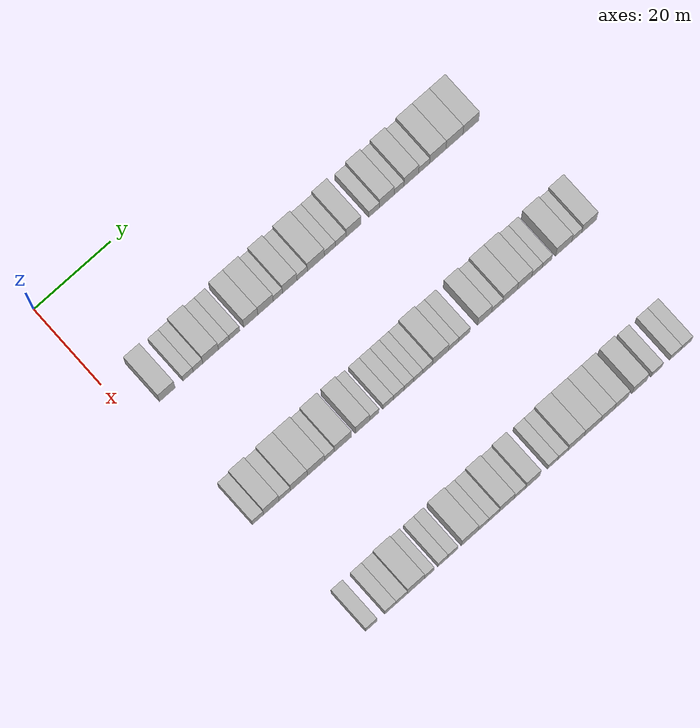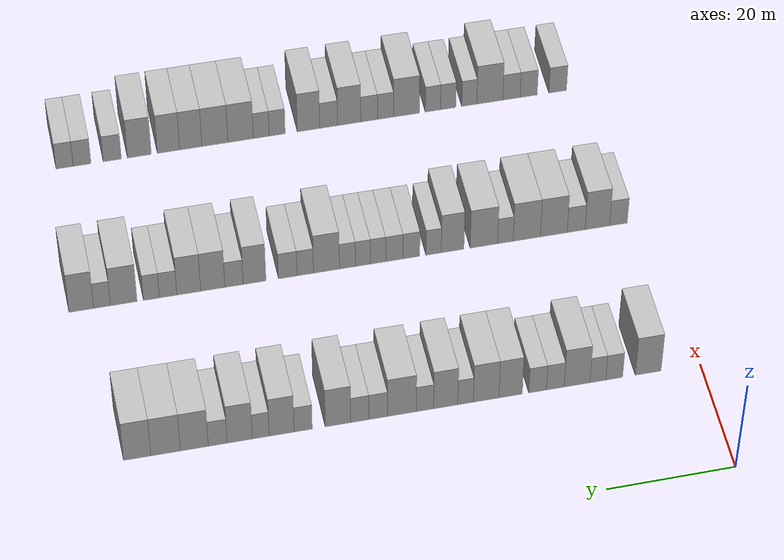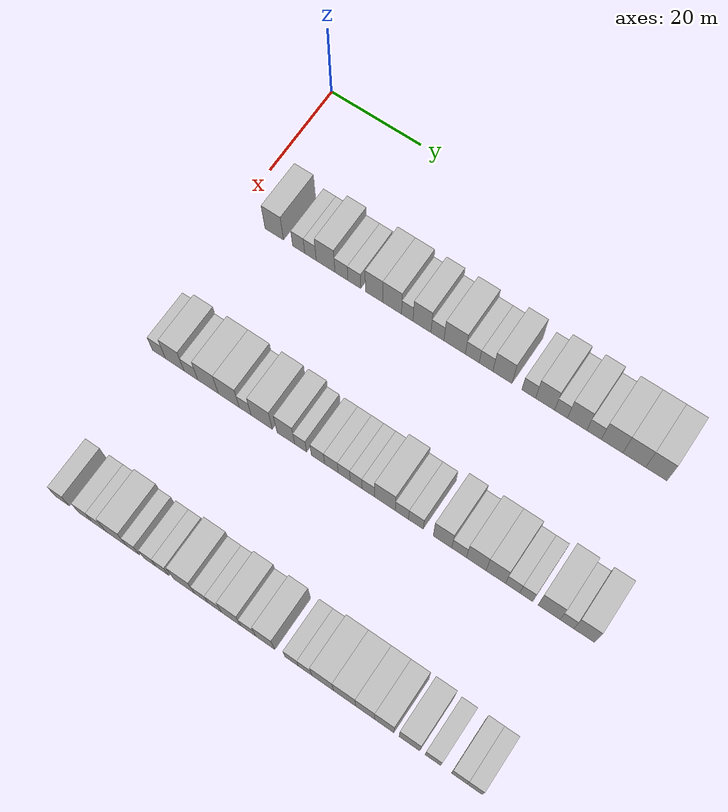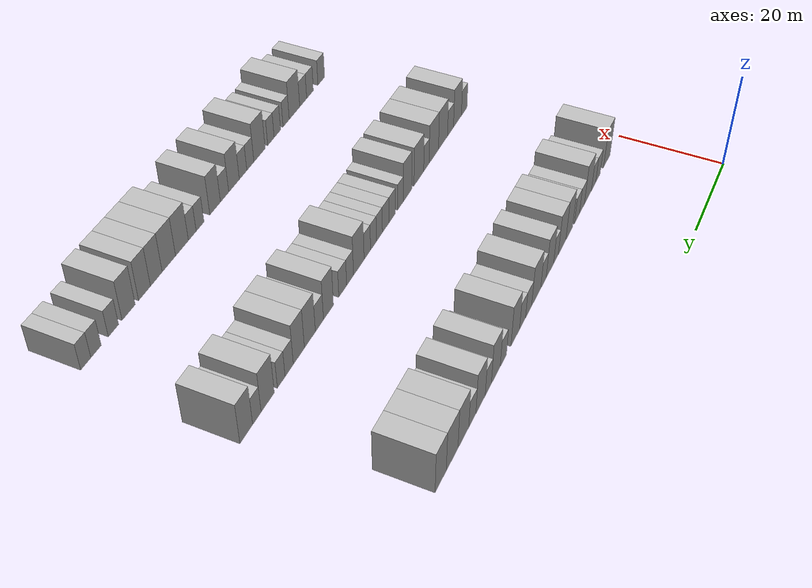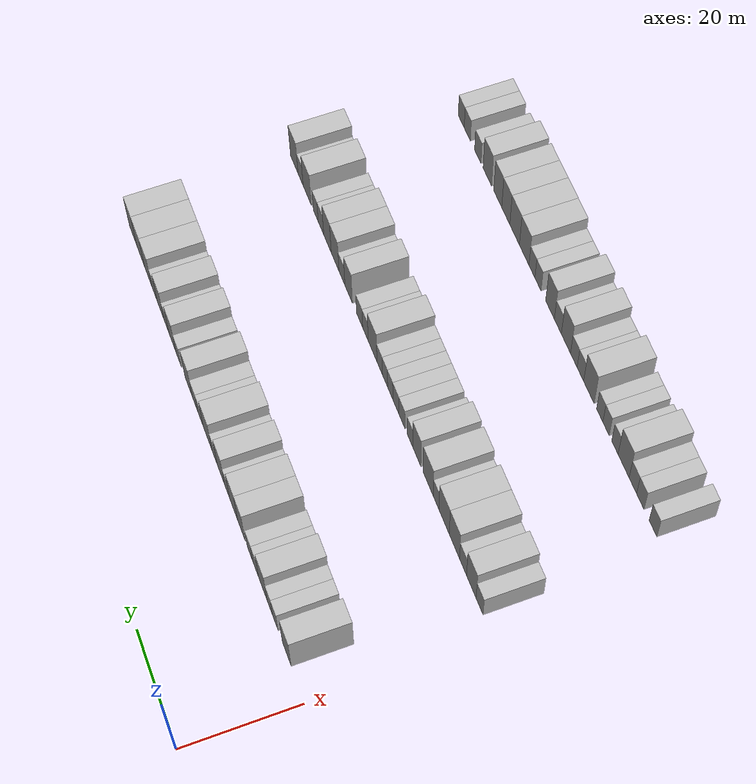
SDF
<sdf version="1.6">
 <world name="default">
  <model name="building_74">
   <static>1</static>
   <pose>25.0000 8.2992 0 0.000000 0.000000 0.000000</pose>
   <link name="link">
    <pose>0 0 4.50 0 0 0</pose>
    <collision name="collision"><geometry><box><size>10.0000 4.0874 9.0000</size></box></geometry></collision>
    <visual name="visual">
     <cast_shadows>0</cast_shadows>
     <geometry><box><size>10.0000 4.0874 9.0000</size></box></geometry>
     <material>
      <script>
       <uri>model://HANNAS_wall/materials/scripts</uri>
       <uri>model://HANNAS_wall/materials/textures</uri>
       <name>vrc/HANNAS_wall</name>
      </script>
     </material>
    </visual>
   </link>
  </model>
  <model name="building_75">
   <static>1</static>
   <pose>25.0000 13.6751 0 0.000000 0.000000 0.000000</pose>
   <link name="link">
    <pose>0 0 3.00 0 0 0</pose>
    <collision name="collision"><geometry><box><size>10.0000 2.6644 6.0000</size></box></geometry></collision>
    <visual name="visual">
     <cast_shadows>0</cast_shadows>
     <geometry><box><size>10.0000 2.6644 6.0000</size></box></geometry>
     <material>
      <script>
       <uri>model://HANNAS_wall/materials/scripts</uri>
       <uri>model://HANNAS_wall/materials/textures</uri>
       <name>vrc/HANNAS_wall</name>
      </script>
     </material>
    </visual>
   </link>
  </model>
  <model name="building_76">
   <static>1</static>
   <pose>25.0000 16.2622 0 0.000000 0.000000 0.000000</pose>
   <link name="link">
    <pose>0 0 3.00 0 0 0</pose>
    <collision name="collision"><geometry><box><size>10.0000 2.5098 6.0000</size></box></geometry></collision>
    <visual name="visual">
     <cast_shadows>0</cast_shadows>
     <geometry><box><size>10.0000 2.5098 6.0000</size></box></geometry>
     <material>
      <script>
       <uri>model://HANNAS_wall/materials/scripts</uri>
       <uri>model://HANNAS_wall/materials/textures</uri>
       <name>vrc/HANNAS_wall</name>
      </script>
     </material>
    </visual>
   </link>
  </model>
  <model name="building_77">
   <static>1</static>
   <pose>25.0000 19.5408 0 0.000000 0.000000 0.000000</pose>
   <link name="link">
    <pose>0 0 4.50 0 0 0</pose>
    <collision name="collision"><geometry><box><size>10.0000 4.0475 9.0000</size></box></geometry></collision>
    <visual name="visual">
     <cast_shadows>0</cast_shadows>
     <geometry><box><size>10.0000 4.0475 9.0000</size></box></geometry>
     <material>
      <script>
       <uri>model://HANNAS_wall/materials/scripts</uri>
       <uri>model://HANNAS_wall/materials/textures</uri>
       <name>vrc/HANNAS_wall</name>
      </script>
     </material>
    </visual>
   </link>
  </model>
  <model name="building_78">
   <static>1</static>
   <pose>25.0000 22.9685 0 0.000000 0.000000 0.000000</pose>
   <link name="link">
    <pose>0 0 3.00 0 0 0</pose>
    <collision name="collision"><geometry><box><size>10.0000 2.8078 6.0000</size></box></geometry></collision>
    <visual name="visual">
     <cast_shadows>0</cast_shadows>
     <geometry><box><size>10.0000 2.8078 6.0000</size></box></geometry>
     <material>
      <script>
       <uri>model://HANNAS_wall/materials/scripts</uri>
       <uri>model://HANNAS_wall/materials/textures</uri>
       <name>vrc/HANNAS_wall</name>
      </script>
     </material>
    </visual>
   </link>
  </model>
  <model name="building_79">
   <static>1</static>
   <pose>25.0000 25.7573 0 0.000000 0.000000 0.000000</pose>
   <link name="link">
    <pose>0 0 3.00 0 0 0</pose>
    <collision name="collision"><geometry><box><size>10.0000 2.7698 6.0000</size></box></geometry></collision>
    <visual name="visual">
     <cast_shadows>0</cast_shadows>
     <geometry><box><size>10.0000 2.7698 6.0000</size></box></geometry>
     <material>
      <script>
       <uri>model://HANNAS_wall/materials/scripts</uri>
       <uri>model://HANNAS_wall/materials/textures</uri>
       <name>vrc/HANNAS_wall</name>
      </script>
     </material>
    </visual>
   </link>
  </model>
  <model name="building_80">
   <static>1</static>
   <pose>25.0000 29.9776 0 0.000000 0.000000 0.000000</pose>
   <link name="link">
    <pose>0 0 4.50 0 0 0</pose>
    <collision name="collision"><geometry><box><size>10.0000 3.6709 9.0000</size></box></geometry></collision>
    <visual name="visual">
     <cast_shadows>0</cast_shadows>
     <geometry><box><size>10.0000 3.6709 9.0000</size></box></geometry>
     <material>
      <script>
       <uri>model://HANNAS_wall/materials/scripts</uri>
       <uri>model://HANNAS_wall/materials/textures</uri>
       <name>vrc/HANNAS_wall</name>
      </script>
     </material>
    </visual>
   </link>
  </model>
  <model name="building_81">
   <static>1</static>
   <pose>25.0000 33.8170 0 0.000000 0.000000 0.000000</pose>
   <link name="link">
    <pose>0 0 4.50 0 0 0</pose>
    <collision name="collision"><geometry><box><size>10.0000 4.0079 9.0000</size></box></geometry></collision>
    <visual name="visual">
     <cast_shadows>0</cast_shadows>
     <geometry><box><size>10.0000 4.0079 9.0000</size></box></geometry>
     <material>
      <script>
       <uri>model://HANNAS_wall/materials/scripts</uri>
       <uri>model://HANNAS_wall/materials/textures</uri>
       <name>vrc/HANNAS_wall</name>
      </script>
     </material>
    </visual>
   </link>
  </model>
  <model name="building_82">
   <static>1</static>
   <pose>25.0000 37.0328 0 0.000000 0.000000 0.000000</pose>
   <link name="link">
    <pose>0 0 3.00 0 0 0</pose>
    <collision name="collision"><geometry><box><size>10.0000 2.4236 6.0000</size></box></geometry></collision>
    <visual name="visual">
     <cast_shadows>0</cast_shadows>
     <geometry><box><size>10.0000 2.4236 6.0000</size></box></geometry>
     <material>
      <script>
       <uri>model://HANNAS_wall/materials/scripts</uri>
       <uri>model://HANNAS_wall/materials/textures</uri>
       <name>vrc/HANNAS_wall</name>
      </script>
     </material>
    </visual>
   </link>
  </model>
  <model name="building_83">
   <static>1</static>
   <pose>25.0000 40.1356 0 0.000000 0.000000 0.000000</pose>
   <link name="link">
    <pose>0 0 4.50 0 0 0</pose>
    <collision name="collision"><geometry><box><size>10.0000 3.7819 9.0000</size></box></geometry></collision>
    <visual name="visual">
     <cast_shadows>0</cast_shadows>
     <geometry><box><size>10.0000 3.7819 9.0000</size></box></geometry>
     <material>
      <script>
       <uri>model://HANNAS_wall/materials/scripts</uri>
       <uri>model://HANNAS_wall/materials/textures</uri>
       <name>vrc/HANNAS_wall</name>
      </script>
     </material>
    </visual>
   </link>
  </model>
  <model name="building_84">
   <static>1</static>
   <pose>25.0000 43.3741 0 0.000000 0.000000 0.000000</pose>
   <link name="link">
    <pose>0 0 3.00 0 0 0</pose>
    <collision name="collision"><geometry><box><size>10.0000 2.6952 6.0000</size></box></geometry></collision>
    <visual name="visual">
     <cast_shadows>0</cast_shadows>
     <geometry><box><size>10.0000 2.6952 6.0000</size></box></geometry>
     <material>
      <script>
       <uri>model://HANNAS_wall/materials/scripts</uri>
       <uri>model://HANNAS_wall/materials/textures</uri>
       <name>vrc/HANNAS_wall</name>
      </script>
     </material>
    </visual>
   </link>
  </model>
  <model name="building_85">
   <static>1</static>
   <pose>25.0000 46.9542 0 0.000000 0.000000 0.000000</pose>
   <link name="link">
    <pose>0 0 4.50 0 0 0</pose>
    <collision name="collision"><geometry><box><size>10.0000 4.4650 9.0000</size></box></geometry></collision>
    <visual name="visual">
     <cast_shadows>0</cast_shadows>
     <geometry><box><size>10.0000 4.4650 9.0000</size></box></geometry>
     <material>
      <script>
       <uri>model://HANNAS_wall/materials/scripts</uri>
       <uri>model://HANNAS_wall/materials/textures</uri>
       <name>vrc/HANNAS_wall</name>
      </script>
     </material>
    </visual>
   </link>
  </model>
  <model name="building_86">
   <static>1</static>
   <pose>25.0000 50.6215 0 0.000000 0.000000 0.000000</pose>
   <link name="link">
    <pose>0 0 3.00 0 0 0</pose>
    <collision name="collision"><geometry><box><size>10.0000 2.8697 6.0000</size></box></geometry></collision>
    <visual name="visual">
     <cast_shadows>0</cast_shadows>
     <geometry><box><size>10.0000 2.8697 6.0000</size></box></geometry>
     <material>
      <script>
       <uri>model://HANNAS_wall/materials/scripts</uri>
       <uri>model://HANNAS_wall/materials/textures</uri>
       <name>vrc/HANNAS_wall</name>
      </script>
     </material>
    </visual>
   </link>
  </model>
  <model name="building_87">
   <static>1</static>
   <pose>25.0000 53.4656 0 0.000000 0.000000 0.000000</pose>
   <link name="link">
    <pose>0 0 3.00 0 0 0</pose>
    <collision name="collision"><geometry><box><size>10.0000 2.8185 6.0000</size></box></geometry></collision>
    <visual name="visual">
     <cast_shadows>0</cast_shadows>
     <geometry><box><size>10.0000 2.8185 6.0000</size></box></geometry>
     <material>
      <script>
       <uri>model://HANNAS_wall/materials/scripts</uri>
       <uri>model://HANNAS_wall/materials/textures</uri>
       <name>vrc/HANNAS_wall</name>
      </script>
     </material>
    </visual>
   </link>
  </model>
  <model name="building_88">
   <static>1</static>
   <pose>25.0000 56.8361 0 0.000000 0.000000 0.000000</pose>
   <link name="link">
    <pose>0 0 4.50 0 0 0</pose>
    <collision name="collision"><geometry><box><size>10.0000 3.9224 9.0000</size></box></geometry></collision>
    <visual name="visual">
     <cast_shadows>0</cast_shadows>
     <geometry><box><size>10.0000 3.9224 9.0000</size></box></geometry>
     <material>
      <script>
       <uri>model://HANNAS_wall/materials/scripts</uri>
       <uri>model://HANNAS_wall/materials/textures</uri>
       <name>vrc/HANNAS_wall</name>
      </script>
     </material>
    </visual>
   </link>
  </model>
  <model name="building_89">
   <static>1</static>
   <pose>25.0000 62.1917 0 0.000000 0.000000 0.000000</pose>
   <link name="link">
    <pose>0 0 3.00 0 0 0</pose>
    <collision name="collision"><geometry><box><size>10.0000 2.7889 6.0000</size></box></geometry></collision>
    <visual name="visual">
     <cast_shadows>0</cast_shadows>
     <geometry><box><size>10.0000 2.7889 6.0000</size></box></geometry>
     <material>
      <script>
       <uri>model://HANNAS_wall/materials/scripts</uri>
       <uri>model://HANNAS_wall/materials/textures</uri>
       <name>vrc/HANNAS_wall</name>
      </script>
     </material>
    </visual>
   </link>
  </model>
  <model name="building_90">
   <static>1</static>
   <pose>25.0000 65.5030 0 0.000000 0.000000 0.000000</pose>
   <link name="link">
    <pose>0 0 4.50 0 0 0</pose>
    <collision name="collision"><geometry><box><size>10.0000 3.8338 9.0000</size></box></geometry></collision>
    <visual name="visual">
     <cast_shadows>0</cast_shadows>
     <geometry><box><size>10.0000 3.8338 9.0000</size></box></geometry>
     <material>
      <script>
       <uri>model://HANNAS_wall/materials/scripts</uri>
       <uri>model://HANNAS_wall/materials/textures</uri>
       <name>vrc/HANNAS_wall</name>
      </script>
     </material>
    </visual>
   </link>
  </model>
  <model name="building_91">
   <static>1</static>
   <pose>25.0000 68.7122 0 0.000000 0.000000 0.000000</pose>
   <link name="link">
    <pose>0 0 3.00 0 0 0</pose>
    <collision name="collision"><geometry><box><size>10.0000 2.5846 6.0000</size></box></geometry></collision>
    <visual name="visual">
     <cast_shadows>0</cast_shadows>
     <geometry><box><size>10.0000 2.5846 6.0000</size></box></geometry>
     <material>
      <script>
       <uri>model://HANNAS_wall/materials/scripts</uri>
       <uri>model://HANNAS_wall/materials/textures</uri>
       <name>vrc/HANNAS_wall</name>
      </script>
     </material>
    </visual>
   </link>
  </model>
  <model name="building_92">
   <static>1</static>
   <pose>25.0000 71.9384 0 0.000000 0.000000 0.000000</pose>
   <link name="link">
    <pose>0 0 4.50 0 0 0</pose>
    <collision name="collision"><geometry><box><size>10.0000 3.8677 9.0000</size></box></geometry></collision>
    <visual name="visual">
     <cast_shadows>0</cast_shadows>
     <geometry><box><size>10.0000 3.8677 9.0000</size></box></geometry>
     <material>
      <script>
       <uri>model://HANNAS_wall/materials/scripts</uri>
       <uri>model://HANNAS_wall/materials/textures</uri>
       <name>vrc/HANNAS_wall</name>
      </script>
     </material>
    </visual>
   </link>
  </model>
  <model name="building_93">
   <static>1</static>
   <pose>25.0000 75.3101 0 0.000000 0.000000 0.000000</pose>
   <link name="link">
    <pose>0 0 3.00 0 0 0</pose>
    <collision name="collision"><geometry><box><size>10.0000 2.8759 6.0000</size></box></geometry></collision>
    <visual name="visual">
     <cast_shadows>0</cast_shadows>
     <geometry><box><size>10.0000 2.8759 6.0000</size></box></geometry>
     <material>
      <script>
       <uri>model://HANNAS_wall/materials/scripts</uri>
       <uri>model://HANNAS_wall/materials/textures</uri>
       <name>vrc/HANNAS_wall</name>
      </script>
     </material>
    </visual>
   </link>
  </model>
  <model name="building_94">
   <static>1</static>
   <pose>25.0000 78.8832 0 0.000000 0.000000 0.000000</pose>
   <link name="link">
    <pose>0 0 4.50 0 0 0</pose>
    <collision name="collision"><geometry><box><size>10.0000 4.2703 9.0000</size></box></geometry></collision>
    <visual name="visual">
     <cast_shadows>0</cast_shadows>
     <geometry><box><size>10.0000 4.2703 9.0000</size></box></geometry>
     <material>
      <script>
       <uri>model://HANNAS_wall/materials/scripts</uri>
       <uri>model://HANNAS_wall/materials/textures</uri>
       <name>vrc/HANNAS_wall</name>
      </script>
     </material>
    </visual>
   </link>
  </model>
  <model name="building_95">
   <static>1</static>
   <pose>25.0000 83.2593 0 0.000000 0.000000 0.000000</pose>
   <link name="link">
    <pose>0 0 4.50 0 0 0</pose>
    <collision name="collision"><geometry><box><size>10.0000 4.4819 9.0000</size></box></geometry></collision>
    <visual name="visual">
     <cast_shadows>0</cast_shadows>
     <geometry><box><size>10.0000 4.4819 9.0000</size></box></geometry>
     <material>
      <script>
       <uri>model://HANNAS_wall/materials/scripts</uri>
       <uri>model://HANNAS_wall/materials/textures</uri>
       <name>vrc/HANNAS_wall</name>
      </script>
     </material>
    </visual>
   </link>
  </model>
  <model name="building_96">
   <static>1</static>
   <pose>25.0000 87.5805 0 0.000000 0.000000 0.000000</pose>
   <link name="link">
    <pose>0 0 4.50 0 0 0</pose>
    <collision name="collision"><geometry><box><size>10.0000 4.1606 9.0000</size></box></geometry></collision>
    <visual name="visual">
     <cast_shadows>0</cast_shadows>
     <geometry><box><size>10.0000 4.1606 9.0000</size></box></geometry>
     <material>
      <script>
       <uri>model://HANNAS_wall/materials/scripts</uri>
       <uri>model://HANNAS_wall/materials/textures</uri>
       <name>vrc/HANNAS_wall</name>
      </script>
     </material>
    </visual>
   </link>
  </model>
  <model name="building_221">
   <static>1</static>
   <pose>55.0000 5.2145 0 0.000000 0.000000 0.000000</pose>
   <link name="link">
    <pose>0 0 3.00 0 0 0</pose>
    <collision name="collision"><geometry><box><size>10.0000 2.8925 6.0000</size></box></geometry></collision>
    <visual name="visual">
     <cast_shadows>0</cast_shadows>
     <geometry><box><size>10.0000 2.8925 6.0000</size></box></geometry>
     <material>
      <script>
       <uri>model://HANNAS_wall/materials/scripts</uri>
       <uri>model://HANNAS_wall/materials/textures</uri>
       <name>vrc/HANNAS_wall</name>
      </script>
     </material>
    </visual>
   </link>
  </model>
  <model name="building_222">
   <static>1</static>
   <pose>55.0000 8.6713 0 0.000000 0.000000 0.000000</pose>
   <link name="link">
    <pose>0 0 4.50 0 0 0</pose>
    <collision name="collision"><geometry><box><size>10.0000 4.0210 9.0000</size></box></geometry></collision>
    <visual name="visual">
     <cast_shadows>0</cast_shadows>
     <geometry><box><size>10.0000 4.0210 9.0000</size></box></geometry>
     <material>
      <script>
       <uri>model://HANNAS_wall/materials/scripts</uri>
       <uri>model://HANNAS_wall/materials/textures</uri>
       <name>vrc/HANNAS_wall</name>
      </script>
     </material>
    </visual>
   </link>
  </model>
  <model name="building_223">
   <static>1</static>
   <pose>55.0000 12.1625 0 0.000000 0.000000 0.000000</pose>
   <link name="link">
    <pose>0 0 3.00 0 0 0</pose>
    <collision name="collision"><geometry><box><size>10.0000 2.9615 6.0000</size></box></geometry></collision>
    <visual name="visual">
     <cast_shadows>0</cast_shadows>
     <geometry><box><size>10.0000 2.9615 6.0000</size></box></geometry>
     <material>
      <script>
       <uri>model://HANNAS_wall/materials/scripts</uri>
       <uri>model://HANNAS_wall/materials/textures</uri>
       <name>vrc/HANNAS_wall</name>
      </script>
     </material>
    </visual>
   </link>
  </model>
  <model name="building_224">
   <static>1</static>
   <pose>55.0000 15.8355 0 0.000000 0.000000 0.000000</pose>
   <link name="link">
    <pose>0 0 4.50 0 0 0</pose>
    <collision name="collision"><geometry><box><size>10.0000 4.3845 9.0000</size></box></geometry></collision>
    <visual name="visual">
     <cast_shadows>0</cast_shadows>
     <geometry><box><size>10.0000 4.3845 9.0000</size></box></geometry>
     <material>
      <script>
       <uri>model://HANNAS_wall/materials/scripts</uri>
       <uri>model://HANNAS_wall/materials/textures</uri>
       <name>vrc/HANNAS_wall</name>
      </script>
     </material>
    </visual>
   </link>
  </model>
  <model name="building_225">
   <static>1</static>
   <pose>55.0000 20.2554 0 0.000000 0.000000 0.000000</pose>
   <link name="link">
    <pose>0 0 4.50 0 0 0</pose>
    <collision name="collision"><geometry><box><size>10.0000 4.4554 9.0000</size></box></geometry></collision>
    <visual name="visual">
     <cast_shadows>0</cast_shadows>
     <geometry><box><size>10.0000 4.4554 9.0000</size></box></geometry>
     <material>
      <script>
       <uri>model://HANNAS_wall/materials/scripts</uri>
       <uri>model://HANNAS_wall/materials/textures</uri>
       <name>vrc/HANNAS_wall</name>
      </script>
     </material>
    </visual>
   </link>
  </model>
  <model name="building_226">
   <static>1</static>
   <pose>55.0000 23.7434 0 0.000000 0.000000 0.000000</pose>
   <link name="link">
    <pose>0 0 3.00 0 0 0</pose>
    <collision name="collision"><geometry><box><size>10.0000 2.5206 6.0000</size></box></geometry></collision>
    <visual name="visual">
     <cast_shadows>0</cast_shadows>
     <geometry><box><size>10.0000 2.5206 6.0000</size></box></geometry>
     <material>
      <script>
       <uri>model://HANNAS_wall/materials/scripts</uri>
       <uri>model://HANNAS_wall/materials/textures</uri>
       <name>vrc/HANNAS_wall</name>
      </script>
     </material>
    </visual>
   </link>
  </model>
  <model name="building_227">
   <static>1</static>
   <pose>55.0000 27.2350 0 0.000000 0.000000 0.000000</pose>
   <link name="link">
    <pose>0 0 4.50 0 0 0</pose>
    <collision name="collision"><geometry><box><size>10.0000 4.4625 9.0000</size></box></geometry></collision>
    <visual name="visual">
     <cast_shadows>0</cast_shadows>
     <geometry><box><size>10.0000 4.4625 9.0000</size></box></geometry>
     <material>
      <script>
       <uri>model://HANNAS_wall/materials/scripts</uri>
       <uri>model://HANNAS_wall/materials/textures</uri>
       <name>vrc/HANNAS_wall</name>
      </script>
     </material>
    </visual>
   </link>
  </model>
  <model name="building_228">
   <static>1</static>
   <pose>55.0000 32.3172 0 0.000000 0.000000 0.000000</pose>
   <link name="link">
    <pose>0 0 4.50 0 0 0</pose>
    <collision name="collision"><geometry><box><size>10.0000 3.7020 9.0000</size></box></geometry></collision>
    <visual name="visual">
     <cast_shadows>0</cast_shadows>
     <geometry><box><size>10.0000 3.7020 9.0000</size></box></geometry>
     <material>
      <script>
       <uri>model://HANNAS_wall/materials/scripts</uri>
       <uri>model://HANNAS_wall/materials/textures</uri>
       <name>vrc/HANNAS_wall</name>
      </script>
     </material>
    </visual>
   </link>
  </model>
  <model name="building_229">
   <static>1</static>
   <pose>55.0000 35.4018 0 0.000000 0.000000 0.000000</pose>
   <link name="link">
    <pose>0 0 3.00 0 0 0</pose>
    <collision name="collision"><geometry><box><size>10.0000 2.4671 6.0000</size></box></geometry></collision>
    <visual name="visual">
     <cast_shadows>0</cast_shadows>
     <geometry><box><size>10.0000 2.4671 6.0000</size></box></geometry>
     <material>
      <script>
       <uri>model://HANNAS_wall/materials/scripts</uri>
       <uri>model://HANNAS_wall/materials/textures</uri>
       <name>vrc/HANNAS_wall</name>
      </script>
     </material>
    </visual>
   </link>
  </model>
  <model name="building_230">
   <static>1</static>
   <pose>55.0000 38.9971 0 0.000000 0.000000 0.000000</pose>
   <link name="link">
    <pose>0 0 3.00 0 0 0</pose>
    <collision name="collision"><geometry><box><size>10.0000 2.7234 6.0000</size></box></geometry></collision>
    <visual name="visual">
     <cast_shadows>0</cast_shadows>
     <geometry><box><size>10.0000 2.7234 6.0000</size></box></geometry>
     <material>
      <script>
       <uri>model://HANNAS_wall/materials/scripts</uri>
       <uri>model://HANNAS_wall/materials/textures</uri>
       <name>vrc/HANNAS_wall</name>
      </script>
     </material>
    </visual>
   </link>
  </model>
  <model name="building_231">
   <static>1</static>
   <pose>55.0000 41.7504 0 0.000000 0.000000 0.000000</pose>
   <link name="link">
    <pose>0 0 3.00 0 0 0</pose>
    <collision name="collision"><geometry><box><size>10.0000 2.7832 6.0000</size></box></geometry></collision>
    <visual name="visual">
     <cast_shadows>0</cast_shadows>
     <geometry><box><size>10.0000 2.7832 6.0000</size></box></geometry>
     <material>
      <script>
       <uri>model://HANNAS_wall/materials/scripts</uri>
       <uri>model://HANNAS_wall/materials/textures</uri>
       <name>vrc/HANNAS_wall</name>
      </script>
     </material>
    </visual>
   </link>
  </model>
  <model name="building_232">
   <static>1</static>
   <pose>55.0000 44.3689 0 0.000000 0.000000 0.000000</pose>
   <link name="link">
    <pose>0 0 3.00 0 0 0</pose>
    <collision name="collision"><geometry><box><size>10.0000 2.4539 6.0000</size></box></geometry></collision>
    <visual name="visual">
     <cast_shadows>0</cast_shadows>
     <geometry><box><size>10.0000 2.4539 6.0000</size></box></geometry>
     <material>
      <script>
       <uri>model://HANNAS_wall/materials/scripts</uri>
       <uri>model://HANNAS_wall/materials/textures</uri>
       <name>vrc/HANNAS_wall</name>
      </script>
     </material>
    </visual>
   </link>
  </model>
  <model name="building_233">
   <static>1</static>
   <pose>55.0000 46.8061 0 0.000000 0.000000 0.000000</pose>
   <link name="link">
    <pose>0 0 3.00 0 0 0</pose>
    <collision name="collision"><geometry><box><size>10.0000 2.4205 6.0000</size></box></geometry></collision>
    <visual name="visual">
     <cast_shadows>0</cast_shadows>
     <geometry><box><size>10.0000 2.4205 6.0000</size></box></geometry>
     <material>
      <script>
       <uri>model://HANNAS_wall/materials/scripts</uri>
       <uri>model://HANNAS_wall/materials/textures</uri>
       <name>vrc/HANNAS_wall</name>
      </script>
     </material>
    </visual>
   </link>
  </model>
  <model name="building_234">
   <static>1</static>
   <pose>55.0000 49.3015 0 0.000000 0.000000 0.000000</pose>
   <link name="link">
    <pose>0 0 3.00 0 0 0</pose>
    <collision name="collision"><geometry><box><size>10.0000 2.5702 6.0000</size></box></geometry></collision>
    <visual name="visual">
     <cast_shadows>0</cast_shadows>
     <geometry><box><size>10.0000 2.5702 6.0000</size></box></geometry>
     <material>
      <script>
       <uri>model://HANNAS_wall/materials/scripts</uri>
       <uri>model://HANNAS_wall/materials/textures</uri>
       <name>vrc/HANNAS_wall</name>
      </script>
     </material>
    </visual>
   </link>
  </model>
  <model name="building_235">
   <static>1</static>
   <pose>55.0000 52.6654 0 0.000000 0.000000 0.000000</pose>
   <link name="link">
    <pose>0 0 4.50 0 0 0</pose>
    <collision name="collision"><geometry><box><size>10.0000 4.1576 9.0000</size></box></geometry></collision>
    <visual name="visual">
     <cast_shadows>0</cast_shadows>
     <geometry><box><size>10.0000 4.1576 9.0000</size></box></geometry>
     <material>
      <script>
       <uri>model://HANNAS_wall/materials/scripts</uri>
       <uri>model://HANNAS_wall/materials/textures</uri>
       <name>vrc/HANNAS_wall</name>
      </script>
     </material>
    </visual>
   </link>
  </model>
  <model name="building_236">
   <static>1</static>
   <pose>55.0000 56.0703 0 0.000000 0.000000 0.000000</pose>
   <link name="link">
    <pose>0 0 3.00 0 0 0</pose>
    <collision name="collision"><geometry><box><size>10.0000 2.6521 6.0000</size></box></geometry></collision>
    <visual name="visual">
     <cast_shadows>0</cast_shadows>
     <geometry><box><size>10.0000 2.6521 6.0000</size></box></geometry>
     <material>
      <script>
       <uri>model://HANNAS_wall/materials/scripts</uri>
       <uri>model://HANNAS_wall/materials/textures</uri>
       <name>vrc/HANNAS_wall</name>
      </script>
     </material>
    </visual>
   </link>
  </model>
  <model name="building_237">
   <static>1</static>
   <pose>55.0000 58.8733 0 0.000000 0.000000 0.000000</pose>
   <link name="link">
    <pose>0 0 3.00 0 0 0</pose>
    <collision name="collision"><geometry><box><size>10.0000 2.9540 6.0000</size></box></geometry></collision>
    <visual name="visual">
     <cast_shadows>0</cast_shadows>
     <geometry><box><size>10.0000 2.9540 6.0000</size></box></geometry>
     <material>
      <script>
       <uri>model://HANNAS_wall/materials/scripts</uri>
       <uri>model://HANNAS_wall/materials/textures</uri>
       <name>vrc/HANNAS_wall</name>
      </script>
     </material>
    </visual>
   </link>
  </model>
  <model name="building_238">
   <static>1</static>
   <pose>55.0000 64.1733 0 0.000000 0.000000 0.000000</pose>
   <link name="link">
    <pose>0 0 4.50 0 0 0</pose>
    <collision name="collision"><geometry><box><size>10.0000 3.6461 9.0000</size></box></geometry></collision>
    <visual name="visual">
     <cast_shadows>0</cast_shadows>
     <geometry><box><size>10.0000 3.6461 9.0000</size></box></geometry>
     <material>
      <script>
       <uri>model://HANNAS_wall/materials/scripts</uri>
       <uri>model://HANNAS_wall/materials/textures</uri>
       <name>vrc/HANNAS_wall</name>
      </script>
     </material>
    </visual>
   </link>
  </model>
  <model name="building_239">
   <static>1</static>
   <pose>55.0000 67.4499 0 0.000000 0.000000 0.000000</pose>
   <link name="link">
    <pose>0 0 3.00 0 0 0</pose>
    <collision name="collision"><geometry><box><size>10.0000 2.9071 6.0000</size></box></geometry></collision>
    <visual name="visual">
     <cast_shadows>0</cast_shadows>
     <geometry><box><size>10.0000 2.9071 6.0000</size></box></geometry>
     <material>
      <script>
       <uri>model://HANNAS_wall/materials/scripts</uri>
       <uri>model://HANNAS_wall/materials/textures</uri>
       <name>vrc/HANNAS_wall</name>
      </script>
     </material>
    </visual>
   </link>
  </model>
  <model name="building_240">
   <static>1</static>
   <pose>55.0000 70.8278 0 0.000000 0.000000 0.000000</pose>
   <link name="link">
    <pose>0 0 4.50 0 0 0</pose>
    <collision name="collision"><geometry><box><size>10.0000 3.8486 9.0000</size></box></geometry></collision>
    <visual name="visual">
     <cast_shadows>0</cast_shadows>
     <geometry><box><size>10.0000 3.8486 9.0000</size></box></geometry>
     <material>
      <script>
       <uri>model://HANNAS_wall/materials/scripts</uri>
       <uri>model://HANNAS_wall/materials/textures</uri>
       <name>vrc/HANNAS_wall</name>
      </script>
     </material>
    </visual>
   </link>
  </model>
  <model name="building_241">
   <static>1</static>
   <pose>55.0000 74.6444 0 0.000000 0.000000 0.000000</pose>
   <link name="link">
    <pose>0 0 4.50 0 0 0</pose>
    <collision name="collision"><geometry><box><size>10.0000 3.7847 9.0000</size></box></geometry></collision>
    <visual name="visual">
     <cast_shadows>0</cast_shadows>
     <geometry><box><size>10.0000 3.7847 9.0000</size></box></geometry>
     <material>
      <script>
       <uri>model://HANNAS_wall/materials/scripts</uri>
       <uri>model://HANNAS_wall/materials/textures</uri>
       <name>vrc/HANNAS_wall</name>
      </script>
     </material>
    </visual>
   </link>
  </model>
  <model name="building_242">
   <static>1</static>
   <pose>55.0000 77.9195 0 0.000000 0.000000 0.000000</pose>
   <link name="link">
    <pose>0 0 3.00 0 0 0</pose>
    <collision name="collision"><geometry><box><size>10.0000 2.7654 6.0000</size></box></geometry></collision>
    <visual name="visual">
     <cast_shadows>0</cast_shadows>
     <geometry><box><size>10.0000 2.7654 6.0000</size></box></geometry>
     <material>
      <script>
       <uri>model://HANNAS_wall/materials/scripts</uri>
       <uri>model://HANNAS_wall/materials/textures</uri>
       <name>vrc/HANNAS_wall</name>
      </script>
     </material>
    </visual>
   </link>
  </model>
  <model name="building_243">
   <static>1</static>
   <pose>55.0000 80.5626 0 0.000000 0.000000 0.000000</pose>
   <link name="link">
    <pose>0 0 3.00 0 0 0</pose>
    <collision name="collision"><geometry><box><size>10.0000 2.5208 6.0000</size></box></geometry></collision>
    <visual name="visual">
     <cast_shadows>0</cast_shadows>
     <geometry><box><size>10.0000 2.5208 6.0000</size></box></geometry>
     <material>
      <script>
       <uri>model://HANNAS_wall/materials/scripts</uri>
       <uri>model://HANNAS_wall/materials/textures</uri>
       <name>vrc/HANNAS_wall</name>
      </script>
     </material>
    </visual>
   </link>
  </model>
  <model name="building_244">
   <static>1</static>
   <pose>55.0000 84.9279 0 0.000000 0.000000 0.000000</pose>
   <link name="link">
    <pose>0 0 4.50 0 0 0</pose>
    <collision name="collision"><geometry><box><size>10.0000 4.2099 9.0000</size></box></geometry></collision>
    <visual name="visual">
     <cast_shadows>0</cast_shadows>
     <geometry><box><size>10.0000 4.2099 9.0000</size></box></geometry>
     <material>
      <script>
       <uri>model://HANNAS_wall/materials/scripts</uri>
       <uri>model://HANNAS_wall/materials/textures</uri>
       <name>vrc/HANNAS_wall</name>
      </script>
     </material>
    </visual>
   </link>
  </model>
  <model name="building_245">
   <static>1</static>
   <pose>55.0000 88.3477 0 0.000000 0.000000 0.000000</pose>
   <link name="link">
    <pose>0 0 3.00 0 0 0</pose>
    <collision name="collision"><geometry><box><size>10.0000 2.6296 6.0000</size></box></geometry></collision>
    <visual name="visual">
     <cast_shadows>0</cast_shadows>
     <geometry><box><size>10.0000 2.6296 6.0000</size></box></geometry>
     <material>
      <script>
       <uri>model://HANNAS_wall/materials/scripts</uri>
       <uri>model://HANNAS_wall/materials/textures</uri>
       <name>vrc/HANNAS_wall</name>
      </script>
     </material>
    </visual>
   </link>
  </model>
  <model name="building_246">
   <static>1</static>
   <pose>55.0000 91.6150 0 0.000000 0.000000 0.000000</pose>
   <link name="link">
    <pose>0 0 4.50 0 0 0</pose>
    <collision name="collision"><geometry><box><size>10.0000 3.9051 9.0000</size></box></geometry></collision>
    <visual name="visual">
     <cast_shadows>0</cast_shadows>
     <geometry><box><size>10.0000 3.9051 9.0000</size></box></geometry>
     <material>
      <script>
       <uri>model://HANNAS_wall/materials/scripts</uri>
       <uri>model://HANNAS_wall/materials/textures</uri>
       <name>vrc/HANNAS_wall</name>
      </script>
     </material>
    </visual>
   </link>
  </model>
  <model name="building_359">
   <static>1</static>
   <pose>85.0000 7.7790 0 0.000000 0.000000 0.000000</pose>
   <link name="link">
    <pose>0 0 3.00 0 0 0</pose>
    <collision name="collision"><geometry><box><size>10.0000 2.9858 6.0000</size></box></geometry></collision>
    <visual name="visual">
     <cast_shadows>0</cast_shadows>
     <geometry><box><size>10.0000 2.9858 6.0000</size></box></geometry>
     <material>
      <script>
       <uri>model://HANNAS_wall/materials/scripts</uri>
       <uri>model://HANNAS_wall/materials/textures</uri>
       <name>vrc/HANNAS_wall</name>
      </script>
     </material>
    </visual>
   </link>
  </model>
  <model name="building_360">
   <static>1</static>
   <pose>85.0000 12.7170 0 0.000000 0.000000 0.000000</pose>
   <link name="link">
    <pose>0 0 3.00 0 0 0</pose>
    <collision name="collision"><geometry><box><size>10.0000 2.8903 6.0000</size></box></geometry></collision>
    <visual name="visual">
     <cast_shadows>0</cast_shadows>
     <geometry><box><size>10.0000 2.8903 6.0000</size></box></geometry>
     <material>
      <script>
       <uri>model://HANNAS_wall/materials/scripts</uri>
       <uri>model://HANNAS_wall/materials/textures</uri>
       <name>vrc/HANNAS_wall</name>
      </script>
     </material>
    </visual>
   </link>
  </model>
  <model name="building_361">
   <static>1</static>
   <pose>85.0000 15.6333 0 0.000000 0.000000 0.000000</pose>
   <link name="link">
    <pose>0 0 3.00 0 0 0</pose>
    <collision name="collision"><geometry><box><size>10.0000 2.9423 6.0000</size></box></geometry></collision>
    <visual name="visual">
     <cast_shadows>0</cast_shadows>
     <geometry><box><size>10.0000 2.9423 6.0000</size></box></geometry>
     <material>
      <script>
       <uri>model://HANNAS_wall/materials/scripts</uri>
       <uri>model://HANNAS_wall/materials/textures</uri>
       <name>vrc/HANNAS_wall</name>
      </script>
     </material>
    </visual>
   </link>
  </model>
  <model name="building_362">
   <static>1</static>
   <pose>85.0000 19.3033 0 0.000000 0.000000 0.000000</pose>
   <link name="link">
    <pose>0 0 4.50 0 0 0</pose>
    <collision name="collision"><geometry><box><size>10.0000 4.3976 9.0000</size></box></geometry></collision>
    <visual name="visual">
     <cast_shadows>0</cast_shadows>
     <geometry><box><size>10.0000 4.3976 9.0000</size></box></geometry>
     <material>
      <script>
       <uri>model://HANNAS_wall/materials/scripts</uri>
       <uri>model://HANNAS_wall/materials/textures</uri>
       <name>vrc/HANNAS_wall</name>
      </script>
     </material>
    </visual>
   </link>
  </model>
  <model name="building_363">
   <static>1</static>
   <pose>85.0000 22.7675 0 0.000000 0.000000 0.000000</pose>
   <link name="link">
    <pose>0 0 3.00 0 0 0</pose>
    <collision name="collision"><geometry><box><size>10.0000 2.5309 6.0000</size></box></geometry></collision>
    <visual name="visual">
     <cast_shadows>0</cast_shadows>
     <geometry><box><size>10.0000 2.5309 6.0000</size></box></geometry>
     <material>
      <script>
       <uri>model://HANNAS_wall/materials/scripts</uri>
       <uri>model://HANNAS_wall/materials/textures</uri>
       <name>vrc/HANNAS_wall</name>
      </script>
     </material>
    </visual>
   </link>
  </model>
  <model name="building_364">
   <static>1</static>
   <pose>85.0000 26.3248 0 0.000000 0.000000 0.000000</pose>
   <link name="link">
    <pose>0 0 3.00 0 0 0</pose>
    <collision name="collision"><geometry><box><size>10.0000 2.5837 6.0000</size></box></geometry></collision>
    <visual name="visual">
     <cast_shadows>0</cast_shadows>
     <geometry><box><size>10.0000 2.5837 6.0000</size></box></geometry>
     <material>
      <script>
       <uri>model://HANNAS_wall/materials/scripts</uri>
       <uri>model://HANNAS_wall/materials/textures</uri>
       <name>vrc/HANNAS_wall</name>
      </script>
     </material>
    </visual>
   </link>
  </model>
  <model name="building_365">
   <static>1</static>
   <pose>85.0000 28.8918 0 0.000000 0.000000 0.000000</pose>
   <link name="link">
    <pose>0 0 3.00 0 0 0</pose>
    <collision name="collision"><geometry><box><size>10.0000 2.5504 6.0000</size></box></geometry></collision>
    <visual name="visual">
     <cast_shadows>0</cast_shadows>
     <geometry><box><size>10.0000 2.5504 6.0000</size></box></geometry>
     <material>
      <script>
       <uri>model://HANNAS_wall/materials/scripts</uri>
       <uri>model://HANNAS_wall/materials/textures</uri>
       <name>vrc/HANNAS_wall</name>
      </script>
     </material>
    </visual>
   </link>
  </model>
  <model name="building_366">
   <static>1</static>
   <pose>85.0000 33.3372 0 0.000000 0.000000 0.000000</pose>
   <link name="link">
    <pose>0 0 4.50 0 0 0</pose>
    <collision name="collision"><geometry><box><size>10.0000 4.3404 9.0000</size></box></geometry></collision>
    <visual name="visual">
     <cast_shadows>0</cast_shadows>
     <geometry><box><size>10.0000 4.3404 9.0000</size></box></geometry>
     <material>
      <script>
       <uri>model://HANNAS_wall/materials/scripts</uri>
       <uri>model://HANNAS_wall/materials/textures</uri>
       <name>vrc/HANNAS_wall</name>
      </script>
     </material>
    </visual>
   </link>
  </model>
  <model name="building_367">
   <static>1</static>
   <pose>85.0000 36.8584 0 0.000000 0.000000 0.000000</pose>
   <link name="link">
    <pose>0 0 3.00 0 0 0</pose>
    <collision name="collision"><geometry><box><size>10.0000 2.7020 6.0000</size></box></geometry></collision>
    <visual name="visual">
     <cast_shadows>0</cast_shadows>
     <geometry><box><size>10.0000 2.7020 6.0000</size></box></geometry>
     <material>
      <script>
       <uri>model://HANNAS_wall/materials/scripts</uri>
       <uri>model://HANNAS_wall/materials/textures</uri>
       <name>vrc/HANNAS_wall</name>
      </script>
     </material>
    </visual>
   </link>
  </model>
  <model name="building_368">
   <static>1</static>
   <pose>85.0000 39.5977 0 0.000000 0.000000 0.000000</pose>
   <link name="link">
    <pose>0 0 3.00 0 0 0</pose>
    <collision name="collision"><geometry><box><size>10.0000 2.7766 6.0000</size></box></geometry></collision>
    <visual name="visual">
     <cast_shadows>0</cast_shadows>
     <geometry><box><size>10.0000 2.7766 6.0000</size></box></geometry>
     <material>
      <script>
       <uri>model://HANNAS_wall/materials/scripts</uri>
       <uri>model://HANNAS_wall/materials/textures</uri>
       <name>vrc/HANNAS_wall</name>
      </script>
     </material>
    </visual>
   </link>
  </model>
  <model name="building_369">
   <static>1</static>
   <pose>85.0000 42.9275 0 0.000000 0.000000 0.000000</pose>
   <link name="link">
    <pose>0 0 4.50 0 0 0</pose>
    <collision name="collision"><geometry><box><size>10.0000 3.8830 9.0000</size></box></geometry></collision>
    <visual name="visual">
     <cast_shadows>0</cast_shadows>
     <geometry><box><size>10.0000 3.8830 9.0000</size></box></geometry>
     <material>
      <script>
       <uri>model://HANNAS_wall/materials/scripts</uri>
       <uri>model://HANNAS_wall/materials/textures</uri>
       <name>vrc/HANNAS_wall</name>
      </script>
     </material>
    </visual>
   </link>
  </model>
  <model name="building_370">
   <static>1</static>
   <pose>85.0000 46.3516 0 0.000000 0.000000 0.000000</pose>
   <link name="link">
    <pose>0 0 3.00 0 0 0</pose>
    <collision name="collision"><geometry><box><size>10.0000 2.9652 6.0000</size></box></geometry></collision>
    <visual name="visual">
     <cast_shadows>0</cast_shadows>
     <geometry><box><size>10.0000 2.9652 6.0000</size></box></geometry>
     <material>
      <script>
       <uri>model://HANNAS_wall/materials/scripts</uri>
       <uri>model://HANNAS_wall/materials/textures</uri>
       <name>vrc/HANNAS_wall</name>
      </script>
     </material>
    </visual>
   </link>
  </model>
  <model name="building_371">
   <static>1</static>
   <pose>85.0000 49.7090 0 0.000000 0.000000 0.000000</pose>
   <link name="link">
    <pose>0 0 4.50 0 0 0</pose>
    <collision name="collision"><geometry><box><size>10.0000 3.7494 9.0000</size></box></geometry></collision>
    <visual name="visual">
     <cast_shadows>0</cast_shadows>
     <geometry><box><size>10.0000 3.7494 9.0000</size></box></geometry>
     <material>
      <script>
       <uri>model://HANNAS_wall/materials/scripts</uri>
       <uri>model://HANNAS_wall/materials/textures</uri>
       <name>vrc/HANNAS_wall</name>
      </script>
     </material>
    </visual>
   </link>
  </model>
  <model name="building_372">
   <static>1</static>
   <pose>85.0000 54.9216 0 0.000000 0.000000 0.000000</pose>
   <link name="link">
    <pose>0 0 3.00 0 0 0</pose>
    <collision name="collision"><geometry><box><size>10.0000 2.6758 6.0000</size></box></geometry></collision>
    <visual name="visual">
     <cast_shadows>0</cast_shadows>
     <geometry><box><size>10.0000 2.6758 6.0000</size></box></geometry>
     <material>
      <script>
       <uri>model://HANNAS_wall/materials/scripts</uri>
       <uri>model://HANNAS_wall/materials/textures</uri>
       <name>vrc/HANNAS_wall</name>
      </script>
     </material>
    </visual>
   </link>
  </model>
  <model name="building_373">
   <static>1</static>
   <pose>85.0000 57.5678 0 0.000000 0.000000 0.000000</pose>
   <link name="link">
    <pose>0 0 3.00 0 0 0</pose>
    <collision name="collision"><geometry><box><size>10.0000 2.6167 6.0000</size></box></geometry></collision>
    <visual name="visual">
     <cast_shadows>0</cast_shadows>
     <geometry><box><size>10.0000 2.6167 6.0000</size></box></geometry>
     <material>
      <script>
       <uri>model://HANNAS_wall/materials/scripts</uri>
       <uri>model://HANNAS_wall/materials/textures</uri>
       <name>vrc/HANNAS_wall</name>
      </script>
     </material>
    </visual>
   </link>
  </model>
  <model name="building_374">
   <static>1</static>
   <pose>85.0000 60.9902 0 0.000000 0.000000 0.000000</pose>
   <link name="link">
    <pose>0 0 4.50 0 0 0</pose>
    <collision name="collision"><geometry><box><size>10.0000 4.2280 9.0000</size></box></geometry></collision>
    <visual name="visual">
     <cast_shadows>0</cast_shadows>
     <geometry><box><size>10.0000 4.2280 9.0000</size></box></geometry>
     <material>
      <script>
       <uri>model://HANNAS_wall/materials/scripts</uri>
       <uri>model://HANNAS_wall/materials/textures</uri>
       <name>vrc/HANNAS_wall</name>
      </script>
     </material>
    </visual>
   </link>
  </model>
  <model name="building_375">
   <static>1</static>
   <pose>85.0000 65.2521 0 0.000000 0.000000 0.000000</pose>
   <link name="link">
    <pose>0 0 4.50 0 0 0</pose>
    <collision name="collision"><geometry><box><size>10.0000 4.2958 9.0000</size></box></geometry></collision>
    <visual name="visual">
     <cast_shadows>0</cast_shadows>
     <geometry><box><size>10.0000 4.2958 9.0000</size></box></geometry>
     <material>
      <script>
       <uri>model://HANNAS_wall/materials/scripts</uri>
       <uri>model://HANNAS_wall/materials/textures</uri>
       <name>vrc/HANNAS_wall</name>
      </script>
     </material>
    </visual>
   </link>
  </model>
  <model name="building_376">
   <static>1</static>
   <pose>85.0000 69.2402 0 0.000000 0.000000 0.000000</pose>
   <link name="link">
    <pose>0 0 4.50 0 0 0</pose>
    <collision name="collision"><geometry><box><size>10.0000 3.6805 9.0000</size></box></geometry></collision>
    <visual name="visual">
     <cast_shadows>0</cast_shadows>
     <geometry><box><size>10.0000 3.6805 9.0000</size></box></geometry>
     <material>
      <script>
       <uri>model://HANNAS_wall/materials/scripts</uri>
       <uri>model://HANNAS_wall/materials/textures</uri>
       <name>vrc/HANNAS_wall</name>
      </script>
     </material>
    </visual>
   </link>
  </model>
  <model name="building_377">
   <static>1</static>
   <pose>85.0000 72.9019 0 0.000000 0.000000 0.000000</pose>
   <link name="link">
    <pose>0 0 4.50 0 0 0</pose>
    <collision name="collision"><geometry><box><size>10.0000 3.6430 9.0000</size></box></geometry></collision>
    <visual name="visual">
     <cast_shadows>0</cast_shadows>
     <geometry><box><size>10.0000 3.6430 9.0000</size></box></geometry>
     <material>
      <script>
       <uri>model://HANNAS_wall/materials/scripts</uri>
       <uri>model://HANNAS_wall/materials/textures</uri>
       <name>vrc/HANNAS_wall</name>
      </script>
     </material>
    </visual>
   </link>
  </model>
  <model name="building_378">
   <static>1</static>
   <pose>85.0000 77.6822 0 0.000000 0.000000 0.000000</pose>
   <link name="link">
    <pose>0 0 4.50 0 0 0</pose>
    <collision name="collision"><geometry><box><size>10.0000 3.9176 9.0000</size></box></geometry></collision>
    <visual name="visual">
     <cast_shadows>0</cast_shadows>
     <geometry><box><size>10.0000 3.9176 9.0000</size></box></geometry>
     <material>
      <script>
       <uri>model://HANNAS_wall/materials/scripts</uri>
       <uri>model://HANNAS_wall/materials/textures</uri>
       <name>vrc/HANNAS_wall</name>
      </script>
     </material>
    </visual>
   </link>
  </model>
  <model name="building_379">
   <static>1</static>
   <pose>85.0000 82.1240 0 0.000000 0.000000 0.000000</pose>
   <link name="link">
    <pose>0 0 3.00 0 0 0</pose>
    <collision name="collision"><geometry><box><size>10.0000 2.9659 6.0000</size></box></geometry></collision>
    <visual name="visual">
     <cast_shadows>0</cast_shadows>
     <geometry><box><size>10.0000 2.9659 6.0000</size></box></geometry>
     <material>
      <script>
       <uri>model://HANNAS_wall/materials/scripts</uri>
       <uri>model://HANNAS_wall/materials/textures</uri>
       <name>vrc/HANNAS_wall</name>
      </script>
     </material>
    </visual>
   </link>
  </model>
  <model name="building_380">
   <static>1</static>
   <pose>85.0000 87.0633 0 0.000000 0.000000 0.000000</pose>
   <link name="link">
    <pose>0 0 3.00 0 0 0</pose>
    <collision name="collision"><geometry><box><size>10.0000 2.9125 6.0000</size></box></geometry></collision>
    <visual name="visual">
     <cast_shadows>0</cast_shadows>
     <geometry><box><size>10.0000 2.9125 6.0000</size></box></geometry>
     <material>
      <script>
       <uri>model://HANNAS_wall/materials/scripts</uri>
       <uri>model://HANNAS_wall/materials/textures</uri>
       <name>vrc/HANNAS_wall</name>
      </script>
     </material>
    </visual>
   </link>
  </model>
  <model name="building_381">
   <static>1</static>
   <pose>85.0000 89.9156 0 0.000000 0.000000 0.000000</pose>
   <link name="link">
    <pose>0 0 3.00 0 0 0</pose>
    <collision name="collision"><geometry><box><size>10.0000 2.7922 6.0000</size></box></geometry></collision>
    <visual name="visual">
     <cast_shadows>0</cast_shadows>
     <geometry><box><size>10.0000 2.7922 6.0000</size></box></geometry>
     <material>
      <script>
       <uri>model://HANNAS_wall/materials/scripts</uri>
       <uri>model://HANNAS_wall/materials/textures</uri>
       <name>vrc/HANNAS_wall</name>
      </script>
     </material>
    </visual>
   </link>
  </model>
 </world>
</sdf>
